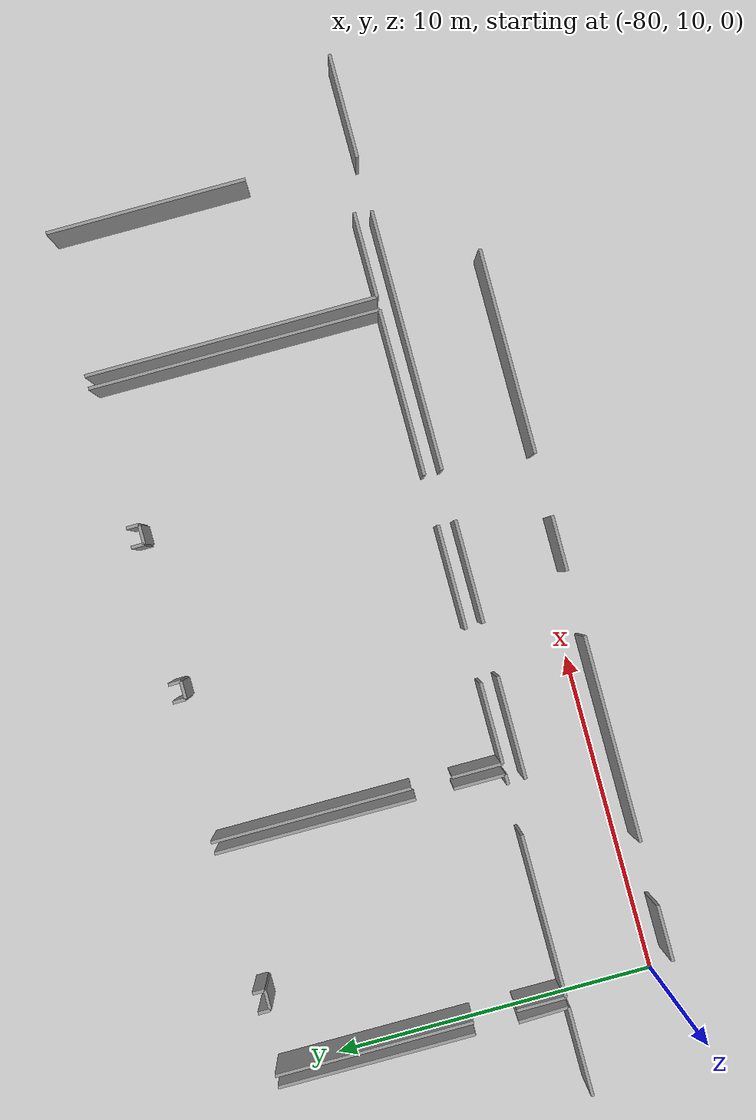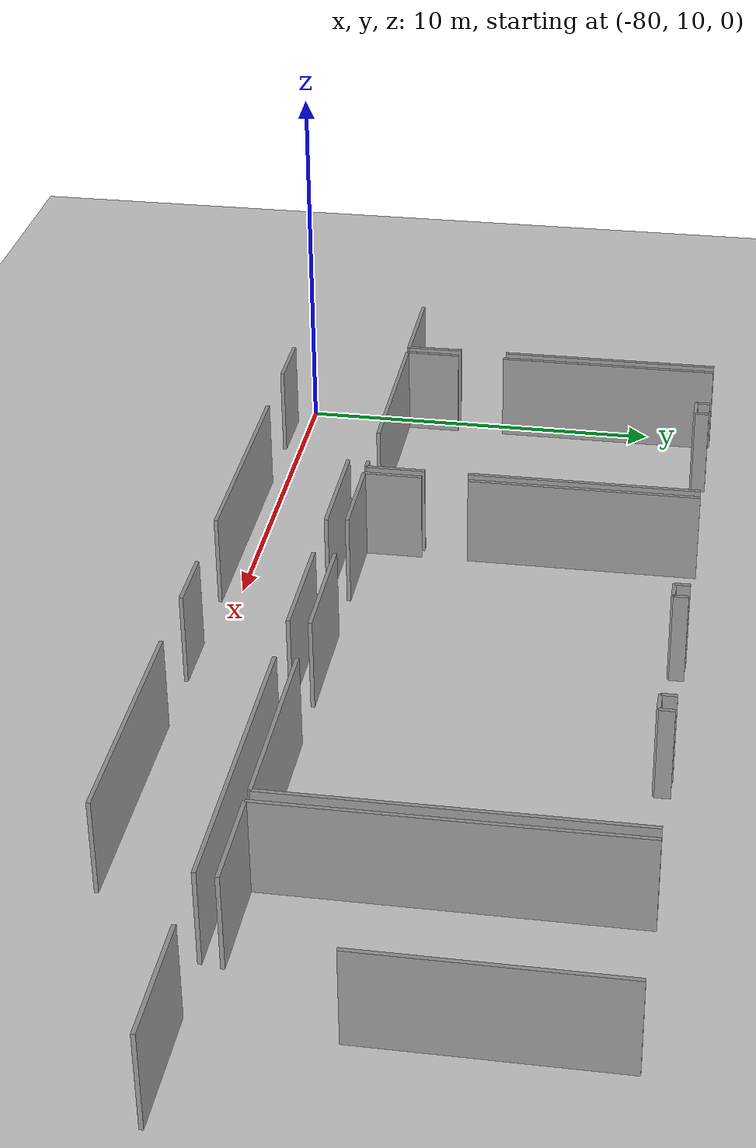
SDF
<sdf version="1.6">
 <world name="default">
  <model name="ground_plane">
   <static>1</static>
   <link name="link">
    <collision name="collision">
     <geometry><plane><normal>0 0 1</normal><size>100 100</size></plane></geometry>
     <surface><friction><ode><mu>100</mu><mu2>50</mu2></ode></friction></surface>
    </collision>
    <visual name="visual">
     <cast_shadows>0</cast_shadows>
     <geometry><plane><normal>0 0 1</normal><size>100 100</size></plane></geometry>
     <material>
      <script><uri>file://media/materials/scripts/gazebo.material</uri><name>Gazebo/Grey</name></script>
     </material>
    </visual>
   </link>
  </model>
  <model name="50010536_PLAN4">
   <static>1</static>
   <link name="Wall_2">
    <collision name="Wall_2_Collision">
     <geometry><box><size>6.31584293559 0.1 2.5</size></box></geometry>
     <pose>3.1579214678 0 1.25 0 0 0</pose>
    </collision>
    <visual name="Wall_2_Visual">
     <pose>3.1579214678 0 1.25 0 0 0</pose>
     <geometry><box><size>6.31584293559 0.1 2.5</size></box></geometry>
     <material>
      <script><uri>file://media/materials/scripts/gazebo.material</uri><name>Gazebo/Grey</name></script>
      <ambient>1 1 1 1</ambient>
     </material>
    </visual>
    <pose>45.0700441228 -12.5419166429 0 0 0 3.14159265359</pose>
   </link>
   <link name="Wall_3">
    <collision name="Wall_3_Collision">
     <geometry><box><size>1.71336063232 0.1 2.5</size></box></geometry>
     <pose>0.85668031616 0 1.25 0 0 0</pose>
    </collision>
    <visual name="Wall_3_Visual">
     <pose>0.85668031616 0 1.25 0 0 0</pose>
     <geometry><box><size>1.71336063232 0.1 2.5</size></box></geometry>
     <material>
      <script><uri>file://media/materials/scripts/gazebo.material</uri><name>Gazebo/Grey</name></script>
      <ambient>1 1 1 1</ambient>
     </material>
    </visual>
    <pose>36.8376852998 -12.5419166429 0 0 0 3.14159265359</pose>
   </link>
   <link name="Wall_4">
    <collision name="Wall_4_Collision">
     <geometry><box><size>6.37399612735 0.1 2.5</size></box></geometry>
     <pose>3.18699806368 0 1.25 0 0 0</pose>
    </collision>
    <visual name="Wall_4_Visual">
     <pose>3.18699806368 0 1.25 0 0 0</pose>
     <geometry><box><size>6.37399612735 0.1 2.5</size></box></geometry>
     <material>
      <script><uri>file://media/materials/scripts/gazebo.material</uri><name>Gazebo/Grey</name></script>
      <ambient>1 1 1 1</ambient>
     </material>
    </visual>
    <pose>33.1207059645 -12.5419166429 0 0 0 3.14159265359</pose>
   </link>
   <link name="Wall_5">
    <collision name="Wall_5_Collision">
     <geometry><box><size>1.72783544424 0.1 2.5</size></box></geometry>
     <pose>0.863917722122 0 1.25 0 0 0</pose>
    </collision>
    <visual name="Wall_5_Visual">
     <pose>0.863917722122 0 1.25 0 0 0</pose>
     <geometry><box><size>1.72783544424 0.1 2.5</size></box></geometry>
     <material>
      <script><uri>file://media/materials/scripts/gazebo.material</uri><name>Gazebo/Grey</name></script>
      <ambient>1 1 1 1</ambient>
     </material>
    </visual>
    <pose>24.8012443259 -12.5419166429 0 0 0 3.14159265359</pose>
   </link>
   <link name="Wall_16">
    <collision name="Wall_16_Collision">
     <geometry><box><size>3.1859822874 0.1 2.5</size></box></geometry>
     <pose>1.5929911437 0 1.25 0 0 0</pose>
    </collision>
    <visual name="Wall_16_Visual">
     <pose>1.5929911437 0 1.25 0 0 0</pose>
     <geometry><box><size>3.1859822874 0.1 2.5</size></box></geometry>
     <material>
      <script><uri>file://media/materials/scripts/gazebo.material</uri><name>Gazebo/Grey</name></script>
      <ambient>1 1 1 1</ambient>
     </material>
    </visual>
    <pose>29.4555312192 -9.72712440085 0 0 0 0.0</pose>
   </link>
   <link name="Wall_17">
    <collision name="Wall_17_Collision">
     <geometry><box><size>3.19436244167 0.1 2.5</size></box></geometry>
     <pose>1.59718122084 0 1.25 0 0 0</pose>
    </collision>
    <visual name="Wall_17_Visual">
     <pose>1.59718122084 0 1.25 0 0 0</pose>
     <geometry><box><size>3.19436244167 0.1 2.5</size></box></geometry>
     <material>
      <script><uri>file://media/materials/scripts/gazebo.material</uri><name>Gazebo/Grey</name></script>
      <ambient>1 1 1 1</ambient>
     </material>
    </visual>
    <pose>34.2677713234 -9.72712440085 0 0 0 0.0</pose>
   </link>
   <link name="Wall_18">
    <collision name="Wall_18_Collision">
     <geometry><box><size>8.01472875599 0.1 2.5</size></box></geometry>
     <pose>4.007364378 0 1.25 0 0 0</pose>
    </collision>
    <visual name="Wall_18_Visual">
     <pose>4.007364378 0 1.25 0 0 0</pose>
     <geometry><box><size>8.01472875599 0.1 2.5</size></box></geometry>
     <material>
      <script><uri>file://media/materials/scripts/gazebo.material</uri><name>Gazebo/Grey</name></script>
      <ambient>1 1 1 1</ambient>
     </material>
    </visual>
    <pose>39.0010348221 -9.72712440085 0 0 0 0.0</pose>
   </link>
   <link name="Wall_19">
    <collision name="Wall_19_Collision">
     <geometry><box><size>3.18166523823 0.1 2.5</size></box></geometry>
     <pose>1.59083261912 0 1.25 0 0 0</pose>
    </collision>
    <visual name="Wall_19_Visual">
     <pose>1.59083261912 0 1.25 0 0 0</pose>
     <geometry><box><size>3.18166523823 0.1 2.5</size></box></geometry>
     <material>
      <script><uri>file://media/materials/scripts/gazebo.material</uri><name>Gazebo/Grey</name></script>
      <ambient>1 1 1 1</ambient>
     </material>
    </visual>
    <pose>48.6570040948 -9.72712440085 0 0 0 0.0</pose>
   </link>
   <link name="Wall_36">
    <collision name="Wall_36_Collision">
     <geometry><box><size>2.74640510428 0.1 2.5</size></box></geometry>
     <pose>1.37320255214 0 1.25 0 0 0</pose>
    </collision>
    <visual name="Wall_36_Visual">
     <pose>1.37320255214 0 1.25 0 0 0</pose>
     <geometry><box><size>2.74640510428 0.1 2.5</size></box></geometry>
     <material>
      <script><uri>file://media/materials/scripts/gazebo.material</uri><name>Gazebo/Grey</name></script>
      <ambient>1 1 1 1</ambient>
     </material>
    </visual>
    <pose>22.5629813034 -9.18292226137 0 0 0 3.14159265359</pose>
   </link>
   <link name="Wall_46">
    <collision name="Wall_46_Collision">
     <geometry><box><size>6.09663841539 0.1 2.5</size></box></geometry>
     <pose>3.04831920769 0 1.25 0 0 0</pose>
    </collision>
    <visual name="Wall_46_Visual">
     <pose>3.04831920769 0 1.25 0 0 0</pose>
     <geometry><box><size>6.09663841539 0.1 2.5</size></box></geometry>
     <material>
      <script><uri>file://media/materials/scripts/gazebo.material</uri><name>Gazebo/Grey</name></script>
      <ambient>1 1 1 1</ambient>
     </material>
    </visual>
    <pose>22.5213344761 -0.205136018792 0 0 0 -1.57079632679</pose>
   </link>
   <link name="Wall_47">
    <collision name="Wall_47_Collision">
     <geometry><box><size>1.55329942336 0.1 2.5</size></box></geometry>
     <pose>0.77664971168 0 1.25 0 0 0</pose>
    </collision>
    <visual name="Wall_47_Visual">
     <pose>0.77664971168 0 1.25 0 0 0</pose>
     <geometry><box><size>1.55329942336 0.1 2.5</size></box></geometry>
     <material>
      <script><uri>file://media/materials/scripts/gazebo.material</uri><name>Gazebo/Grey</name></script>
      <ambient>1 1 1 1</ambient>
     </material>
    </visual>
    <pose>22.5213344761 -7.63018125258 0 0 0 -1.54398126584</pose>
   </link>
   <link name="Wall_48">
    <collision name="Wall_48_Collision">
     <geometry><box><size>0.306256546996 0.1 2.5</size></box></geometry>
     <pose>0.153128273498 0 1.25 0 0 0</pose>
    </collision>
    <visual name="Wall_48_Visual">
     <pose>0.153128273498 0 1.25 0 0 0</pose>
     <geometry><box><size>0.306256546996 0.1 2.5</size></box></geometry>
     <material>
      <script><uri>file://media/materials/scripts/gazebo.material</uri><name>Gazebo/Grey</name></script>
      <ambient>1 1 1 1</ambient>
     </material>
    </visual>
    <pose>29.7440116814 -9.17982414373 0 0 0 3.14159265359</pose>
   </link>
   <link name="Wall_49">
    <collision name="Wall_49_Collision">
     <geometry><box><size>5.00625337269 0.1 2.5</size></box></geometry>
     <pose>2.50312668635 0 1.25 0 0 0</pose>
    </collision>
    <visual name="Wall_49_Visual">
     <pose>2.50312668635 0 1.25 0 0 0</pose>
     <geometry><box><size>5.00625337269 0.1 2.5</size></box></geometry>
     <material>
      <script><uri>file://media/materials/scripts/gazebo.material</uri><name>Gazebo/Grey</name></script>
      <ambient>1 1 1 1</ambient>
     </material>
    </visual>
    <pose>27.8749833349 -9.17982414373 0 0 0 3.14159265359</pose>
   </link>
   <link name="Wall_50">
    <collision name="Wall_50_Collision">
     <geometry><box><size>1.51670634543 0.1 2.5</size></box></geometry>
     <pose>0.758353172714 0 1.25 0 0 0</pose>
    </collision>
    <visual name="Wall_50_Visual">
     <pose>0.758353172714 0 1.25 0 0 0</pose>
     <geometry><box><size>1.51670634543 0.1 2.5</size></box></geometry>
     <material>
      <script><uri>file://media/materials/scripts/gazebo.material</uri><name>Gazebo/Grey</name></script>
      <ambient>1 1 1 1</ambient>
     </material>
    </visual>
    <pose>22.8687299622 -9.17982414373 0 0 0 1.57079632679</pose>
   </link>
   <link name="Wall_51">
    <collision name="Wall_51_Collision">
     <geometry><box><size>6.12675618195 0.1 2.5</size></box></geometry>
     <pose>3.06337809098 0 1.25 0 0 0</pose>
    </collision>
    <visual name="Wall_51_Visual">
     <pose>3.06337809098 0 1.25 0 0 0</pose>
     <geometry><box><size>6.12675618195 0.1 2.5</size></box></geometry>
     <material>
      <script><uri>file://media/materials/scripts/gazebo.material</uri><name>Gazebo/Grey</name></script>
      <ambient>1 1 1 1</ambient>
     </material>
    </visual>
    <pose>22.8687299622 -6.33438085262 0 0 0 1.57079632679</pose>
   </link>
   <link name="Wall_52">
    <collision name="Wall_52_Collision">
     <geometry><box><size>0.372332793702 0.1 2.5</size></box></geometry>
     <pose>0.186166396851 0 1.25 0 0 0</pose>
    </collision>
    <visual name="Wall_52_Visual">
     <pose>0.186166396851 0 1.25 0 0 0</pose>
     <geometry><box><size>0.372332793702 0.1 2.5</size></box></geometry>
     <material>
      <script><uri>file://media/materials/scripts/gazebo.material</uri><name>Gazebo/Grey</name></script>
      <ambient>1 1 1 1</ambient>
     </material>
    </visual>
    <pose>24.8075929277 -0.207624670666 0 0 0 -1.57079632679</pose>
   </link>
   <link name="Wall_53">
    <collision name="Wall_53_Collision">
     <geometry><box><size>0.610989429578 0.1 2.5</size></box></geometry>
     <pose>0.305494714789 0 1.25 0 0 0</pose>
    </collision>
    <visual name="Wall_53_Visual">
     <pose>0.305494714789 0 1.25 0 0 0</pose>
     <geometry><box><size>0.610989429578 0.1 2.5</size></box></geometry>
     <material>
      <script><uri>file://media/materials/scripts/gazebo.material</uri><name>Gazebo/Grey</name></script>
      <ambient>1 1 1 1</ambient>
     </material>
    </visual>
    <pose>24.8075929277 -0.579957464368 0 0 0 0.0</pose>
   </link>
   <link name="Wall_54">
    <collision name="Wall_54_Collision">
     <geometry><box><size>0.38188109069 0.1 2.5</size></box></geometry>
     <pose>0.190940545345 0 1.25 0 0 0</pose>
    </collision>
    <visual name="Wall_54_Visual">
     <pose>0.190940545345 0 1.25 0 0 0</pose>
     <geometry><box><size>0.38188109069 0.1 2.5</size></box></geometry>
     <material>
      <script><uri>file://media/materials/scripts/gazebo.material</uri><name>Gazebo/Grey</name></script>
      <ambient>1 1 1 1</ambient>
     </material>
    </visual>
    <pose>25.4185823572 -0.579957464368 0 0 0 1.57079632679</pose>
   </link>
   <link name="Wall_55">
    <collision name="Wall_55_Collision">
     <geometry><box><size>6.21309716535 0.1 2.5</size></box></geometry>
     <pose>3.10654858267 0 1.25 0 0 0</pose>
    </collision>
    <visual name="Wall_55_Visual">
     <pose>3.10654858267 0 1.25 0 0 0</pose>
     <geometry><box><size>6.21309716535 0.1 2.5</size></box></geometry>
     <material>
      <script><uri>file://media/materials/scripts/gazebo.material</uri><name>Gazebo/Grey</name></script>
      <ambient>1 1 1 1</ambient>
     </material>
    </visual>
    <pose>29.7399485763 -0.198076373679 0 0 0 -1.57079632679</pose>
   </link>
   <link name="Wall_56">
    <collision name="Wall_56_Collision">
     <geometry><box><size>1.59982739872 0.1 2.5</size></box></geometry>
     <pose>0.799913699362 0 1.25 0 0 0</pose>
    </collision>
    <visual name="Wall_56_Visual">
     <pose>0.799913699362 0 1.25 0 0 0</pose>
     <geometry><box><size>1.59982739872 0.1 2.5</size></box></geometry>
     <material>
      <script><uri>file://media/materials/scripts/gazebo.material</uri><name>Gazebo/Grey</name></script>
      <ambient>1 1 1 1</ambient>
     </material>
    </visual>
    <pose>29.7399485763 -7.58000190458 0 0 0 -1.5682566094</pose>
   </link>
   <link name="Wall_57">
    <collision name="Wall_57_Collision">
     <geometry><box><size>5.11722693077 0.1 2.5</size></box></geometry>
     <pose>2.55861346538 0 1.25 0 0 0</pose>
    </collision>
    <visual name="Wall_57_Visual">
     <pose>2.55861346538 0 1.25 0 0 0</pose>
     <geometry><box><size>5.11722693077 0.1 2.5</size></box></geometry>
     <material>
      <script><uri>file://media/materials/scripts/gazebo.material</uri><name>Gazebo/Grey</name></script>
      <ambient>1 1 1 1</ambient>
     </material>
    </visual>
    <pose>44.1025172206 -9.18292226137 0 0 0 3.14159265359</pose>
   </link>
   <link name="Wall_58">
    <collision name="Wall_58_Collision">
     <geometry><box><size>3.23423166048 0.1 2.5</size></box></geometry>
     <pose>1.61711583024 0 1.25 0 0 0</pose>
    </collision>
    <visual name="Wall_58_Visual">
     <pose>1.61711583024 0 1.25 0 0 0</pose>
     <geometry><box><size>3.23423166048 0.1 2.5</size></box></geometry>
     <material>
      <script><uri>file://media/materials/scripts/gazebo.material</uri><name>Gazebo/Grey</name></script>
      <ambient>1 1 1 1</ambient>
     </material>
    </visual>
    <pose>37.458324604 -9.18292226137 0 0 0 3.14159265359</pose>
   </link>
   <link name="Wall_59">
    <collision name="Wall_59_Collision">
     <geometry><box><size>2.49855569311 0.1 2.5</size></box></geometry>
     <pose>1.24927784655 0 1.25 0 0 0</pose>
    </collision>
    <visual name="Wall_59_Visual">
     <pose>1.24927784655 0 1.25 0 0 0</pose>
     <geometry><box><size>2.49855569311 0.1 2.5</size></box></geometry>
     <material>
      <script><uri>file://media/materials/scripts/gazebo.material</uri><name>Gazebo/Grey</name></script>
      <ambient>1 1 1 1</ambient>
     </material>
    </visual>
    <pose>32.583614259 -9.18292226137 0 0 0 3.14159265359</pose>
   </link>
   <link name="Wall_60">
    <collision name="Wall_60_Collision">
     <geometry><box><size>1.56866330191 0.1 2.5</size></box></geometry>
     <pose>0.784331650954 0 1.25 0 0 0</pose>
    </collision>
    <visual name="Wall_60_Visual">
     <pose>0.784331650954 0 1.25 0 0 0</pose>
     <geometry><box><size>1.56866330191 0.1 2.5</size></box></geometry>
     <material>
      <script><uri>file://media/materials/scripts/gazebo.material</uri><name>Gazebo/Grey</name></script>
      <ambient>1 1 1 1</ambient>
     </material>
    </visual>
    <pose>30.0850585659 -9.18292226137 0 0 0 1.57079632679</pose>
   </link>
   <link name="Wall_61">
    <collision name="Wall_61_Collision">
     <geometry><box><size>6.18869314034 0.1 2.5</size></box></geometry>
     <pose>3.09434657017 0 1.25 0 0 0</pose>
    </collision>
    <visual name="Wall_61_Visual">
     <pose>3.09434657017 0 1.25 0 0 0</pose>
     <geometry><box><size>6.18869314034 0.1 2.5</size></box></geometry>
     <material>
      <script><uri>file://media/materials/scripts/gazebo.material</uri><name>Gazebo/Grey</name></script>
      <ambient>1 1 1 1</ambient>
     </material>
    </visual>
    <pose>30.0850585659 -6.36434625274 0 0 0 1.57079632679</pose>
   </link>
   <link name="Wall_62">
    <collision name="Wall_62_Collision">
     <geometry><box><size>0.39523854871 0.1 2.5</size></box></geometry>
     <pose>0.197619274355 0 1.25 0 0 0</pose>
    </collision>
    <visual name="Wall_62_Visual">
     <pose>0.197619274355 0 1.25 0 0 0</pose>
     <geometry><box><size>0.39523854871 0.1 2.5</size></box></geometry>
     <material>
      <script><uri>file://media/materials/scripts/gazebo.material</uri><name>Gazebo/Grey</name></script>
      <ambient>1 1 1 1</ambient>
     </material>
    </visual>
    <pose>34.4071866171 -0.175653112402 0 0 0 -1.57079632679</pose>
   </link>
   <link name="Wall_63">
    <collision name="Wall_63_Collision">
     <geometry><box><size>0.549027076786 0.1 2.5</size></box></geometry>
     <pose>0.274513538393 0 1.25 0 0 0</pose>
    </collision>
    <visual name="Wall_63_Visual">
     <pose>0.274513538393 0 1.25 0 0 0</pose>
     <geometry><box><size>0.549027076786 0.1 2.5</size></box></geometry>
     <material>
      <script><uri>file://media/materials/scripts/gazebo.material</uri><name>Gazebo/Grey</name></script>
      <ambient>1 1 1 1</ambient>
     </material>
    </visual>
    <pose>34.4071866171 -0.570891661112 0 0 0 0.0</pose>
   </link>
   <link name="Wall_64">
    <collision name="Wall_64_Collision">
     <geometry><box><size>0.384268164937 0.1 2.5</size></box></geometry>
     <pose>0.192134082468 0 1.25 0 0 0</pose>
    </collision>
    <visual name="Wall_64_Visual">
     <pose>0.192134082468 0 1.25 0 0 0</pose>
     <geometry><box><size>0.384268164937 0.1 2.5</size></box></geometry>
     <material>
      <script><uri>file://media/materials/scripts/gazebo.material</uri><name>Gazebo/Grey</name></script>
      <ambient>1 1 1 1</ambient>
     </material>
    </visual>
    <pose>34.9562136939 -0.570891661112 0 0 0 1.57079632679</pose>
   </link>
   <link name="Wall_65">
    <collision name="Wall_65_Collision">
     <geometry><box><size>0.400393613307 0.1 2.5</size></box></geometry>
     <pose>0.200196806653 0 1.25 0 0 0</pose>
    </collision>
    <visual name="Wall_65_Visual">
     <pose>0.200196806653 0 1.25 0 0 0</pose>
     <geometry><box><size>0.400393613307 0.1 2.5</size></box></geometry>
     <material>
      <script><uri>file://media/materials/scripts/gazebo.material</uri><name>Gazebo/Grey</name></script>
      <ambient>1 1 1 1</ambient>
     </material>
    </visual>
    <pose>39.1907310415 -0.186623496175 0 0 0 -1.57079632679</pose>
   </link>
   <link name="Wall_66">
    <collision name="Wall_66_Collision">
     <geometry><box><size>0.597784338 0.1 2.5</size></box></geometry>
     <pose>0.298892169 0 1.25 0 0 0</pose>
    </collision>
    <visual name="Wall_66_Visual">
     <pose>0.298892169 0 1.25 0 0 0</pose>
     <geometry><box><size>0.597784338 0.1 2.5</size></box></geometry>
     <material>
      <script><uri>file://media/materials/scripts/gazebo.material</uri><name>Gazebo/Grey</name></script>
      <ambient>1 1 1 1</ambient>
     </material>
    </visual>
    <pose>39.1907310415 -0.587017109482 0 0 0 0.0</pose>
   </link>
   <link name="Wall_67">
    <collision name="Wall_67_Collision">
     <geometry><box><size>0.39018506174 0.1 2.5</size></box></geometry>
     <pose>0.19509253087 0 1.25 0 0 0</pose>
    </collision>
    <visual name="Wall_67_Visual">
     <pose>0.19509253087 0 1.25 0 0 0</pose>
     <geometry><box><size>0.39018506174 0.1 2.5</size></box></geometry>
     <material>
      <script><uri>file://media/materials/scripts/gazebo.material</uri><name>Gazebo/Grey</name></script>
      <ambient>1 1 1 1</ambient>
     </material>
    </visual>
    <pose>39.7885153795 -0.587017109482 0 0 0 1.57079632679</pose>
   </link>
   <link name="Wall_68">
    <collision name="Wall_68_Collision">
     <geometry><box><size>8.98609195031 0.1 2.5</size></box></geometry>
     <pose>4.49304597516 0 1.25 0 0 0</pose>
    </collision>
    <visual name="Wall_68_Visual">
     <pose>4.49304597516 0 1.25 0 0 0</pose>
     <geometry><box><size>8.98609195031 0.1 2.5</size></box></geometry>
     <material>
      <script><uri>file://media/materials/scripts/gazebo.material</uri><name>Gazebo/Grey</name></script>
      <ambient>1 1 1 1</ambient>
     </material>
    </visual>
    <pose>44.0969304511 -0.196832047741 0 0 0 -1.57017461383</pose>
   </link>
   <link name="Wall_70">
    <collision name="Wall_70_Collision">
     <geometry><box><size>2.60470431387 0.1 2.5</size></box></geometry>
     <pose>1.30235215694 0 1.25 0 0 0</pose>
    </collision>
    <visual name="Wall_70_Visual">
     <pose>1.30235215694 0 1.25 0 0 0</pose>
     <geometry><box><size>2.60470431387 0.1 2.5</size></box></geometry>
     <material>
      <script><uri>file://media/materials/scripts/gazebo.material</uri><name>Gazebo/Grey</name></script>
      <ambient>1 1 1 1</ambient>
     </material>
    </visual>
    <pose>47.0911849665 -9.20760562486 0 0 0 3.14159265359</pose>
   </link>
   <link name="Wall_71">
    <collision name="Wall_71_Collision">
     <geometry><box><size>9.02098212869 0.1 2.5</size></box></geometry>
     <pose>4.51049106434 0 1.25 0 0 0</pose>
    </collision>
    <visual name="Wall_71_Visual">
     <pose>4.51049106434 0 1.25 0 0 0</pose>
     <geometry><box><size>9.02098212869 0.1 2.5</size></box></geometry>
     <material>
      <script><uri>file://media/materials/scripts/gazebo.material</uri><name>Gazebo/Grey</name></script>
      <ambient>1 1 1 1</ambient>
     </material>
    </visual>
    <pose>44.4864806526 -9.20760562486 0 0 0 1.57079632679</pose>
   </link>
   <link name="Wall_72">
    <collision name="Wall_72_Collision">
     <geometry><box><size>6.15248071612 0.1 2.5</size></box></geometry>
     <pose>3.07624035806 0 1.25 0 0 0</pose>
    </collision>
    <visual name="Wall_72_Visual">
     <pose>3.07624035806 0 1.25 0 0 0</pose>
     <geometry><box><size>6.15248071612 0.1 2.5</size></box></geometry>
     <material>
      <script><uri>file://media/materials/scripts/gazebo.material</uri><name>Gazebo/Grey</name></script>
      <ambient>1 1 1 1</ambient>
     </material>
    </visual>
    <pose>48.8952036314 -0.186623496175 0 0 0 -1.57079632679</pose>
   </link>
   <pose>-102.5 22.0619893343 0 0 0 0</pose>
  </model>
 </world>
</sdf>
